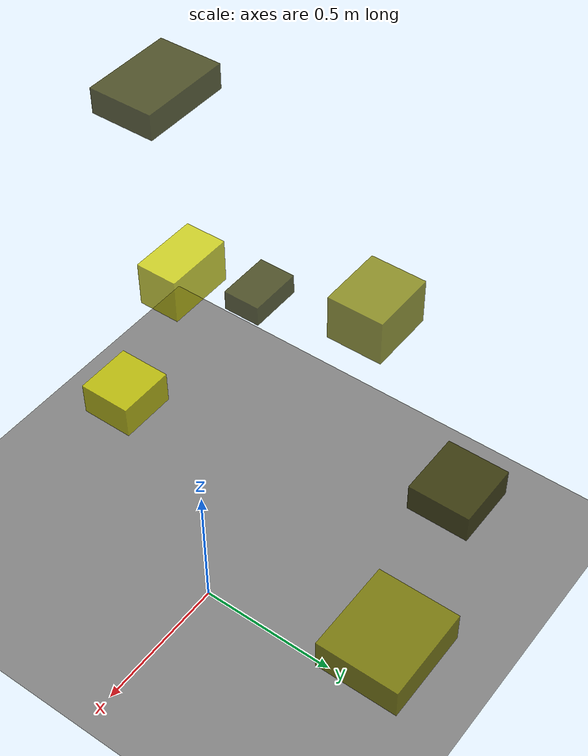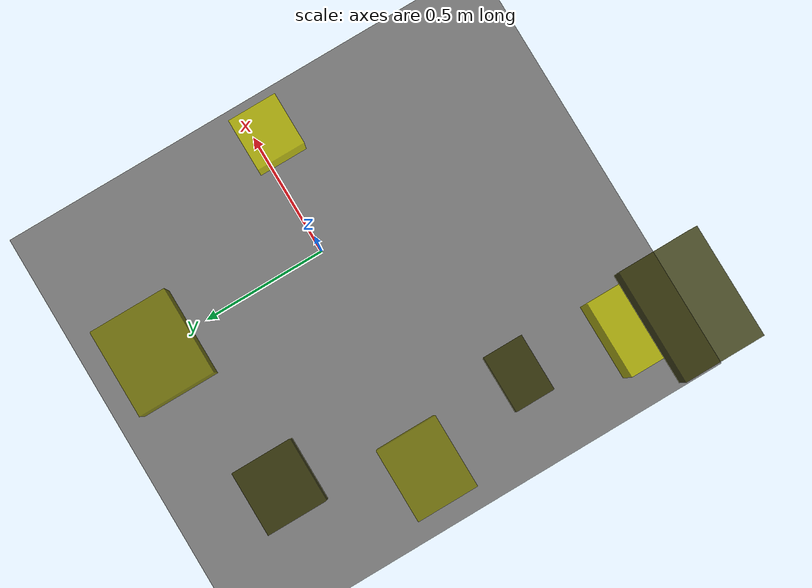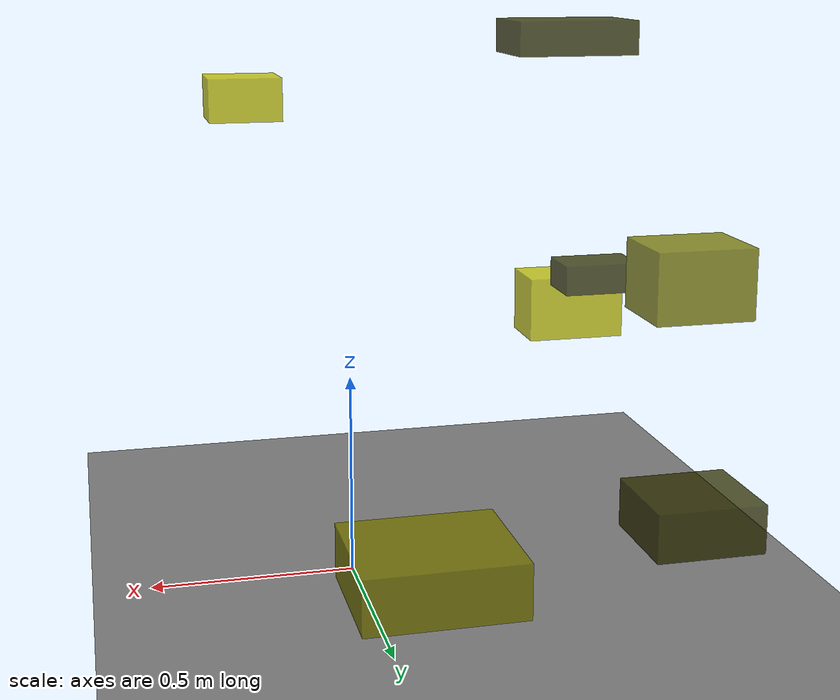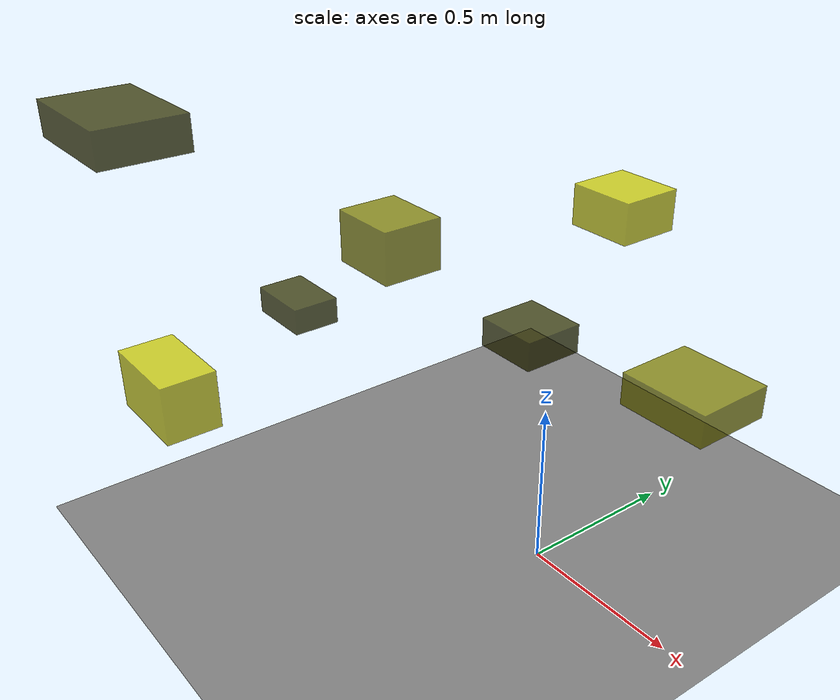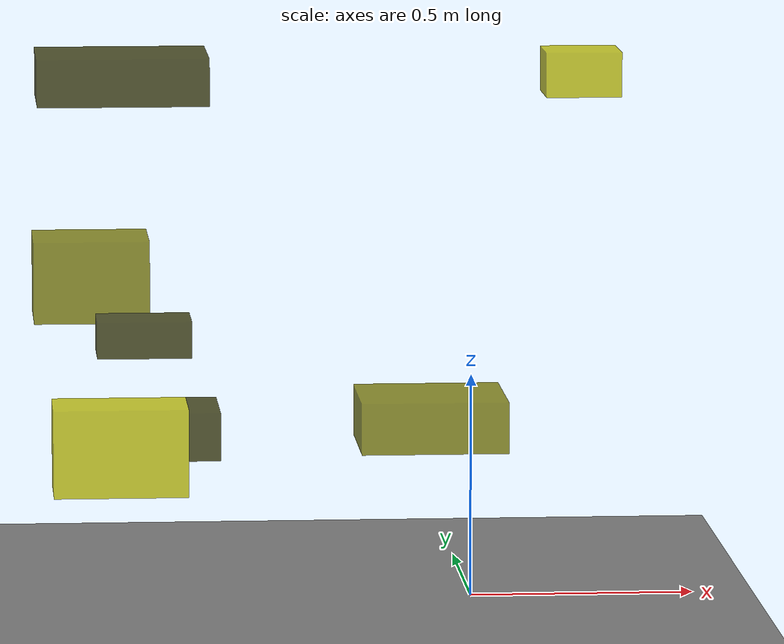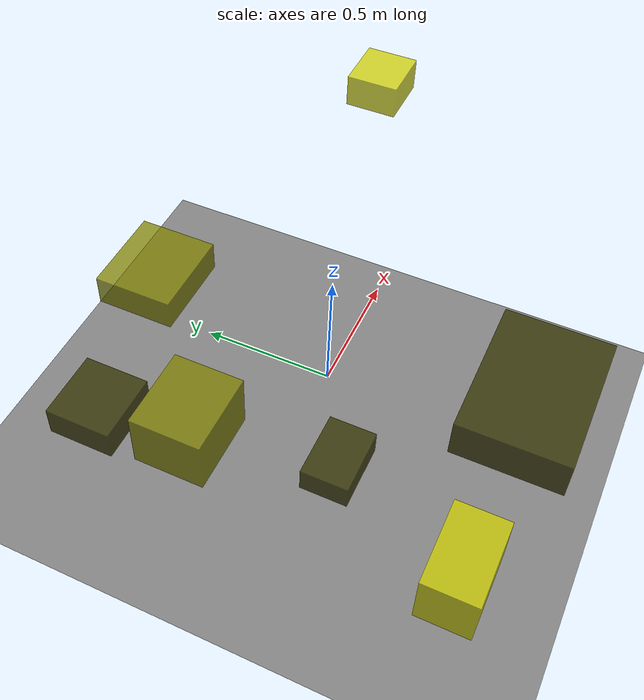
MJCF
<?xml version="1.0"?>
<mujoco model="obstacle_scene">
  <compiler angle="radian" coordinate="local"/>
  <option timestep="0.001" gravity="0 0 -9.81"/>

  <asset>
    <material name="obstacle_mat" rgba="0.8 0.8 0.0 0.8"/>
    <material name="ground_mat" rgba="0.5 0.5 0.5 1"/>
  </asset>

  <worldbody>
    <!-- Ground plane -->
    <geom name="ground" type="plane" size="3 3 0.1" material="ground_mat"/>

    <!-- Obstacles -->
    <body name="obstacle_0" pos="-0.744818 -0.337145 0.647906">
      <geom name="obs_0" type="box" size="0.102588 0.071226 0.039825" rgba="0.2 0.2 0.0 0.8"/>
    </body>
    <body name="obstacle_1" pos="-0.036185 0.692670 0.287312">
      <geom name="obs_1" type="box" size="0.171133 0.149921 0.060022" rgba="0.5 0.5 0.0 0.8"/>
    </body>
    <body name="obstacle_2" pos="0.241232 -0.026193 1.183845">
      <geom name="obs_2" type="box" size="0.083637 0.077446 0.049640" rgba="0.8 0.8 0.0 0.8"/>
    </body>
    <body name="obstacle_3" pos="-0.805362 -0.796765 1.268153">
      <geom name="obs_3" type="box" size="0.179396 0.127700 0.049896" rgba="0.2 0.2 0.0 0.8"/>
    </body>
    <body name="obstacle_4" pos="-0.847831 0.076705 0.720243">
      <geom name="obs_4" type="box" size="0.128490 0.108777 0.091115" rgba="0.5 0.5 0.0 0.8"/>
    </body>
    <body name="obstacle_5" pos="-0.810653 -0.750101 0.470984">
      <geom name="obs_5" type="box" size="0.142677 0.086585 0.093592" rgba="0.8 0.8 0.0 0.8"/>
    </body>
    <body name="obstacle_6" pos="-0.665379 0.550129 0.292893">
      <geom name="obs_6" type="box" size="0.124912 0.117687 0.055784" rgba="0.2 0.2 0.0 0.8"/>
    </body>
  </worldbody>
</mujoco>
